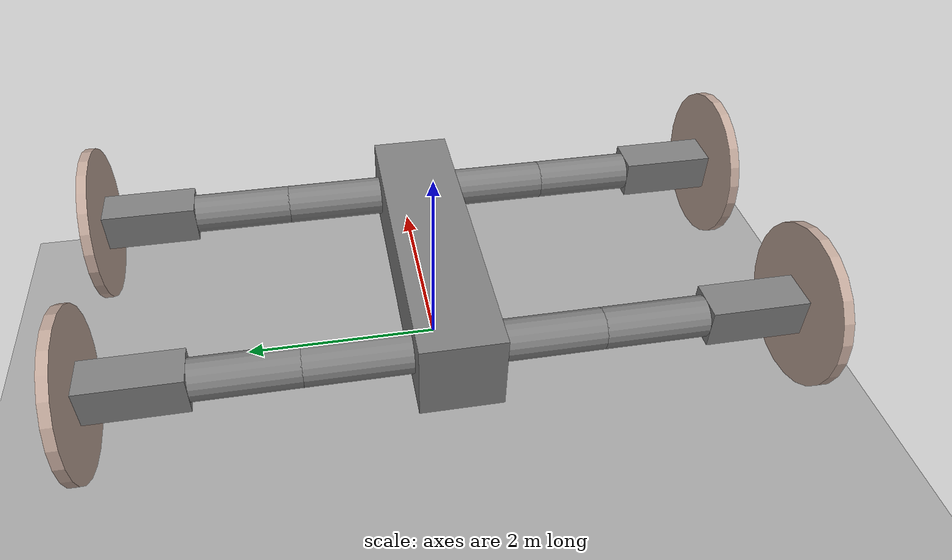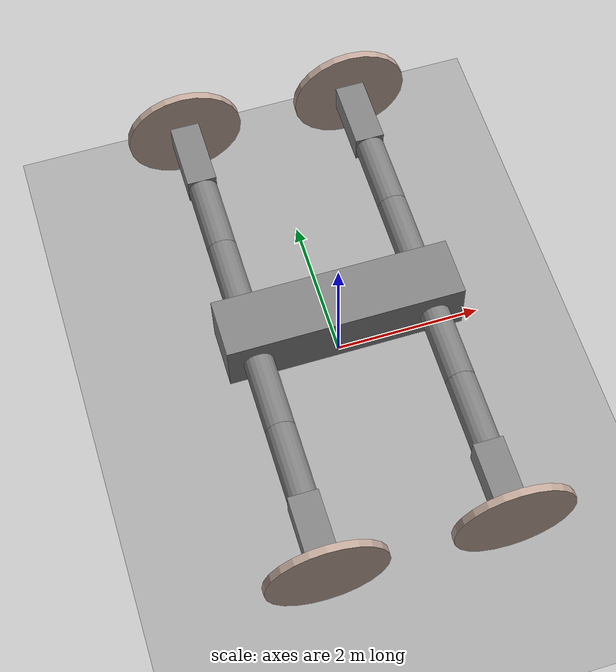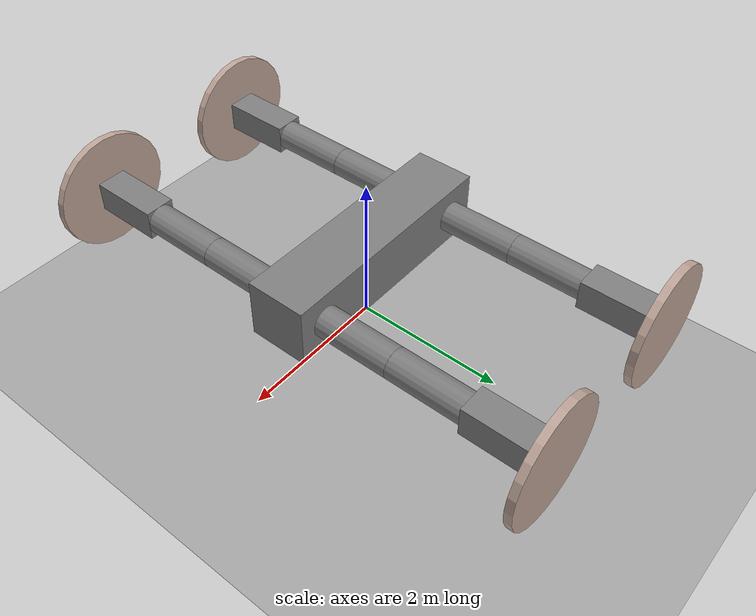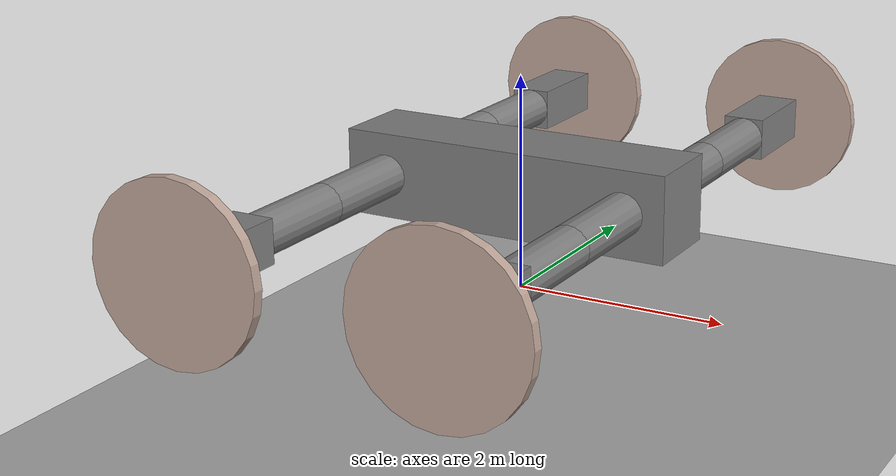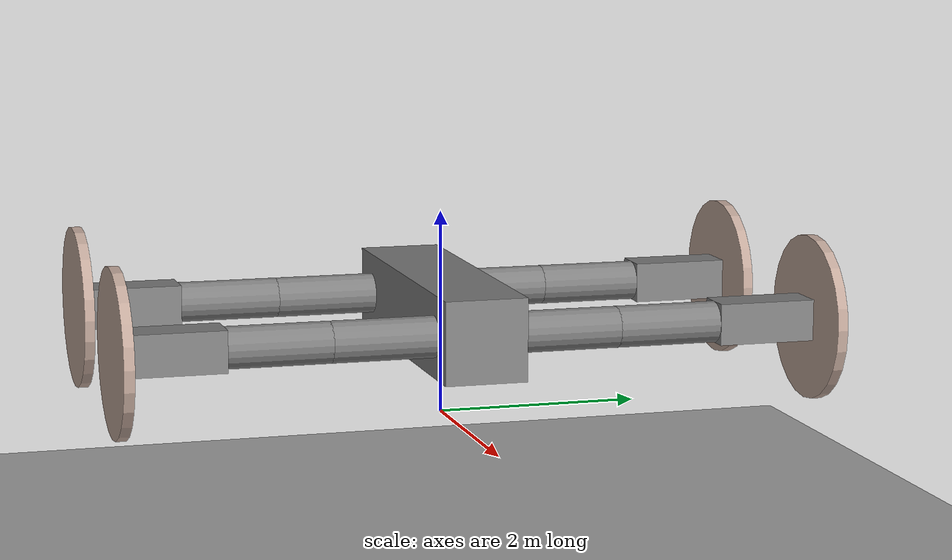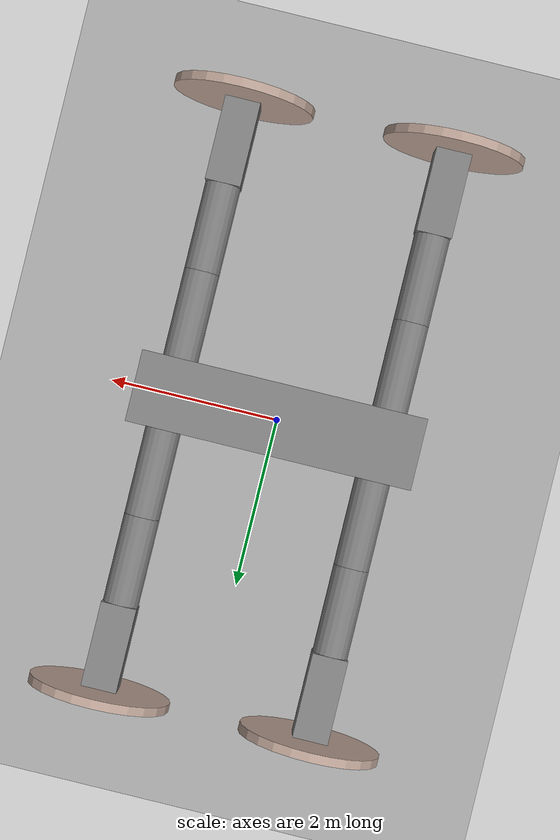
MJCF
<mujoco model="robot">
    <compiler angle="degree" coordinate="local" inertiafromgeom="true"/>
    <option integrator="RK4" timestep="0.01" impratio= "1"/>
    <default >
        <geom conaffinity="0" condim="3" density="1.0" friction="1 0.5 0.5" margin="0.01" />
        <default class="leg">
            <joint type="hinge" range="-90 90" armature="1" damping="200" limited="true" frictionloss="25"/>
            <motor ctrlrange="-1 1" gear="1" forcerange="-1 1"/>
            <position ctrlrange="-10 10" gear="6.3694" forcerange="-300 300" kp="200" kv="1"/>
        </default>
        <default class="wheel">
            <geom type="cylinder" size="0.8" fromto="0 -0.05 0 0 0.05 0" material="Matwheel"  friction="1 0.5 1"/>
            <joint type="hinge" armature="1" damping=".3" limited="false" frictionloss="0"/>
            <motor ctrlrange="-1 1" gear="100" forcerange="-150 150"/>
            <velocity ctrlrange="-10 10" gear="10" forcerange="-150 150" kv="150"/>
        </default>
        <default class="propl">

            <general ctrlrange="0 1" gear="0 50 0 0 0 0 "/>
            <mesh scale="0.01 0.01 0.01"/>
        </default>
        <default class="propr">
            <general ctrlrange="0 1" gear="0 -50 0 0 0 0 "/>
            <mesh scale="0.01 0.01 0.01"/>
        </default>

    </default>
    <asset>
        <texture builtin="checker" height="1024" name="texplane" rgb1=".5 .5 .5" rgb2="0.8 0.8 0.8" type="2d" width="1024"/>
        <material name="MatPlane" reflectance="0.5" shininess="1" specular="1" texrepeat="5 5" texture="texplane"/>
        <texture builtin="checker" height="1024" name="texwheel" rgb1="1 .5 .2" rgb2="0.5 0.8 1" type="2d" width="1024"/>
        <material name="Matwheel" reflectance="0.5" shininess="1" specular="1"  texture="texwheel"/>
    </asset>
    <worldbody>
        <light directional="true" pos="-0.5 0.5 3" dir="0 0 -1" />
        <geom conaffinity="1" condim="3" material="MatPlane" name="floor" pos="0 0 -1"  size="100 100 100" type="plane" friction="1 0.5 1"/>
        <!-- 构建主体 -->
        <body name="torso" pos="0 0 1">
            <joint armature="0" damping="0" limited="false" margin="0.01" name="root" pos="0 0 0" type="free"/>
            <geom name="torso_geom" pos="0 0 0" type="box" size="1.6 0.4 0.4" />
            <!-- 构建左前1腿 -->
            <body name="lf_leg1" pos="1.2 0.9 0">
                <geom name="lf_leg1_geom" pos="0 0 0" fromto="0 -0.5 0 0 0.5 0" size="0.2" type="capsule"/>
                <joint axis="1 0 0" name="lf_leg1_Joint_x" pos="0 -0.5 0" class="leg"/>
                <joint axis="0 0 1" name="lf_leg1_Joint_z" pos="0 -0.5 0" class="leg"/>
                <!-- 构建左前2腿 -->
                <body name="lf_leg2" pos="0 1 0">
                    <geom name="lf_leg2_geom" pos="0 0 0" fromto="0 -0.5 0 0 0.5 0" size="0.2" type="capsule"/>
                    <joint axis="1 0 0" name="lf_leg2_Joint_x" pos="0 -0.5 0" class="leg"/>
                    <joint axis="0 0 1" name="lf_leg2_Joint_z" pos="0 -0.5 0" class="leg"/>

                    <!-- 构建左前3腿 -->
                    <body name="lf_leg3" pos="0 1 0">
                        <geom name="lf_leg3_geom" pos="0 0 0" fromto="0 -0.5 0 0 0.5 0" size="0.2" type="box"/>
                        <joint axis="1 0 0" name="lf_leg3_Joint_x" pos="0 -0.5 0" class="leg"/>
                        <joint axis="0 0 1" name="lf_leg3_Joint_z" pos="0 -0.5 0" class="leg"/>
                        <!-- 构建左前3腿肌肉节点 -->
                        <body name ="lf_motor" pos="0 0.5 0">
                            <geom name ="lf_motor_geom" pos="0 0 0" class="wheel"/>
                            <joint axis="0 1 0" name="lf_motor_y" pos="0 -0.1 0" class="wheel"/>
                            <site name="thrust1" pos="0 0 0"/>
                        </body>
                    </body>
                </body>
            </body>
            <!-- 构建右前1腿 -->
            <body name="rf_leg1" pos="1.2 -0.9 0">
                <geom name="rf_leg1_geom" pos="0 0 0" fromto="0 -0.5 0 0 0.5 0" size="0.2" type="capsule"/>
                <joint axis="1 0 0" name="rf_leg1_Joint_x" pos="0 0.5 0" class="leg"/>
                <joint axis="0 0 1" name="rf_leg1_Joint_z" pos="0 0.5 0" class="leg"/>

                <!-- 构建右前2腿 -->
                <body name="rf_leg2" pos="0 -1 0">
                    <geom name="rf_leg2_geom" pos="0 0 0" fromto="0 -0.5 0 0 0.5 0" size="0.2" type="capsule"/>
                    <joint axis="1 0 0" name="rf_leg2_Joint_x" pos="0 0.5 0" class="leg"/>
                    <joint axis="0 0 1" name="rf_leg2_Joint_z" pos="0 0.5 0" class="leg"/>

                    <!-- 构建右前3腿 -->
                    <body name="rf_leg3" pos="0 -1 0">
                        <geom name="rf_leg3_geom" pos="0 0 0" fromto="0 -0.5 0 0 0.5 0" size="0.2" type="box"/>
                        <joint axis="1 0 0" name="rf_leg3_Joint_x" pos="0 0.5 0" class="leg"/>
                        <joint axis="0 0 1" name="rf_leg3_Joint_z" pos="0 0.5 0" class="leg"/>
                        <body name ="rf_motor" pos="0 -0.5 0">
                            <geom name ="rf_motor_geom" pos="0 0 0" class="wheel"/>
                            <joint axis="0 1 0" name="rf_motor_y" pos="0 0.1 0" class="wheel"/>
                            <site name="thrust2" pos="0 0 0"/>
                        </body>
                    </body>
                </body>
            </body>
            <!-- 构建左后1腿 -->
            <body name="lb_leg1" pos="-1.2 0.9 0">
                <geom name="lb_leg1_geom" pos="0 0 0" fromto="0 -0.5 0 0 0.5 0" size="0.2" type="capsule"/>
                <joint axis="1 0 0" name="lb_leg1_Joint_x" pos="0 -0.5 0" class="leg"/>
                <joint axis="0 0 1" name="lb_leg1_Joint_z" pos="0 -0.5 0" class="leg"/>

                <!-- 构建左后2腿 -->
                <body name="lb_leg2" pos="0 1 0">
                    <geom name="lb_leg2_geom" pos="0 0 0" fromto="0 -0.5 0 0 0.5 0" size="0.2" type="capsule"/>
                    <joint axis="1 0 0" name="lb_leg2_Joint_x" pos="0 -0.5 0" class="leg"/>
                    <joint axis="0 0 1" name="lb_leg2_Joint_z" pos="0 -0.5 0" class="leg"/>
                    <!-- 构建左后3腿 -->
                    <body name="lb_leg3" pos="0 1 0">
                        <geom name="lb_leg3_geom" pos="0 0 0" fromto="0 -0.5 0 0 0.5 0" size="0.2" type="box"/>
                        <joint axis="1 0 0" name="lb_leg3_Joint_x" pos="0 -0.5 0" class="leg"/>
                        <joint axis="0 0 1" name="lb_leg3_Joint_z" pos="0 -0.5 0" class="leg"/>
                        <body name ="lb_motor" pos="0 0.5 0">
                            <geom name ="lb_motor_geom" pos="0 0 0" class="wheel"/>
                            <joint axis="0 1 0" name="lb_motor_y" pos="0 -0.1 0" class="wheel"/>
                            <site name="thrust3" pos="0 0 0"/>
                        </body>
                    </body>
                </body>
            </body>
            <!-- 构建右后1腿 -->
            <body name="rb_leg1" pos="-1.2 -0.9 0">
                <geom name="rb_leg1_geom" pos="0 0 0" fromto="0 -0.5 0 0 0.5 0" size="0.2" type="capsule"/>
                <joint axis="1 0 0" name="rb_leg1_Joint_x" pos="0 0.5 0" class="leg"/>
                <joint axis="0 0 1" name="rb_leg1_Joint_z" pos="0 0.5 0" class="leg"/>

                <!-- 构建右后2腿 -->
                <body name="rb_leg2" pos="0 -1 0">
                    <geom name="rb_leg2_geom" pos="0 0 0" fromto="0 -0.5 0 0 0.5 0" size="0.2" type="capsule"/>
                    <joint axis="1 0 0" name="rb_leg2_Joint_x" pos="0 0.5 0" class="leg"/>
                    <joint axis="0 0 1" name="rb_leg2_Joint_z" pos="0 0.5 0" class="leg"/>

                    <!-- 构建右后3腿 -->
                    <body name="rb_leg3" pos="0 -1 0">
                        <geom name="rb_leg3_geom" pos="0 0 0" fromto="0 -0.5 0 0 0.5 0" size="0.2" type="box"/>
                        <joint axis="1 0 0" name="rb_leg3_Joint_x" pos="0 0.5 0" class="leg"/>
                        <joint axis="0 0 1" name="rb_leg3_Joint_z" pos="0 0.5 0" class="leg"/>
                        <body name ="rb_motor" pos="0 -0.5 0">
                            <geom name ="rb_motor_geom" pos="0 0 0" class="wheel"/>
                            <joint axis="0 1 0" name="rb_motor_y" pos="0 0.1 0" class="wheel"/>
                            <site name="thrust4" pos="0 0 0"/>
                        </body>
                    </body>
                </body>
            </body>

        </body>
    </worldbody>
    <!-- 肌肉 -->

    <actuator>

        <position name="lf_leg1_motor_x" joint="lf_leg1_Joint_x" class="leg" />
        <position name="lf_leg1_motor_z" joint="lf_leg1_Joint_z" class="leg" />
        <position name="lf_leg2_motor_x" joint="lf_leg2_Joint_x" class="leg" />
        <position name="lf_leg2_motor_z" joint="lf_leg2_Joint_z" class="leg" />
        <position name="lf_leg3_motor_x" joint="lf_leg3_Joint_x" class="leg" />
        <position name="lf_leg3_motor_z" joint="lf_leg3_Joint_z" class="leg" />
        <position name="rf_leg1_motor_x" joint="rf_leg1_Joint_x" class="leg" />
        <position name="rf_leg1_motor_z" joint="rf_leg1_Joint_z" class="leg" />
        <position name="rf_leg2_motor_x" joint="rf_leg2_Joint_x" class="leg" />
        <position name="rf_leg2_motor_z" joint="rf_leg2_Joint_z" class="leg" />
        <position name="rf_leg3_motor_x" joint="rf_leg3_Joint_x" class="leg" />
        <position name="rf_leg3_motor_z" joint="rf_leg3_Joint_z" class="leg" />
        <position name="lb_leg1_motor_x" joint="lb_leg1_Joint_x" class="leg" />
        <position name="lb_leg2_motor_x" joint="lb_leg2_Joint_x" class="leg" />
        <position name="lb_leg3_motor_x" joint="lb_leg3_Joint_x" class="leg" />
        <position name="rb_leg1_motor_x" joint="rb_leg1_Joint_x" class="leg" />
        <position name="rb_leg2_motor_x" joint="rb_leg2_Joint_x" class="leg" />
        <position name="rb_leg3_motor_x" joint="rb_leg3_Joint_x" class="leg" />
        <position name="lb_leg1_motor_z" joint="lb_leg1_Joint_z" class="leg" />
        <position name="lb_leg2_motor_z" joint="lb_leg2_Joint_z" class="leg" />
        <position name="lb_leg3_motor_z" joint="lb_leg3_Joint_z" class="leg" />
        <position name="rb_leg1_motor_z" joint="rb_leg1_Joint_z" class="leg" />
        <position name="rb_leg2_motor_z" joint="rb_leg2_Joint_z" class="leg" />
        <position name="rb_leg3_motor_z" joint="rb_leg3_Joint_z" class="leg" />
        <velocity name="lf_motor" joint="lf_motor_y" class="wheel"/>
        <velocity name="rf_motor" joint="rf_motor_y" class="wheel"/>
        <velocity name="lb_motor" joint="lb_motor_y" class="wheel"/>
        <velocity name="rb_motor" joint="rb_motor_y" class="wheel"/>
        <general name="thrust_1" site="thrust1" class="propl"/>
        <general name="thrust_2" site="thrust2" class="propr"/>
        <general name="thrust_3" site="thrust3" class="propl"/>
        <general name="thrust_4" site="thrust4" class="propr"/>

    </actuator>
</mujoco>
